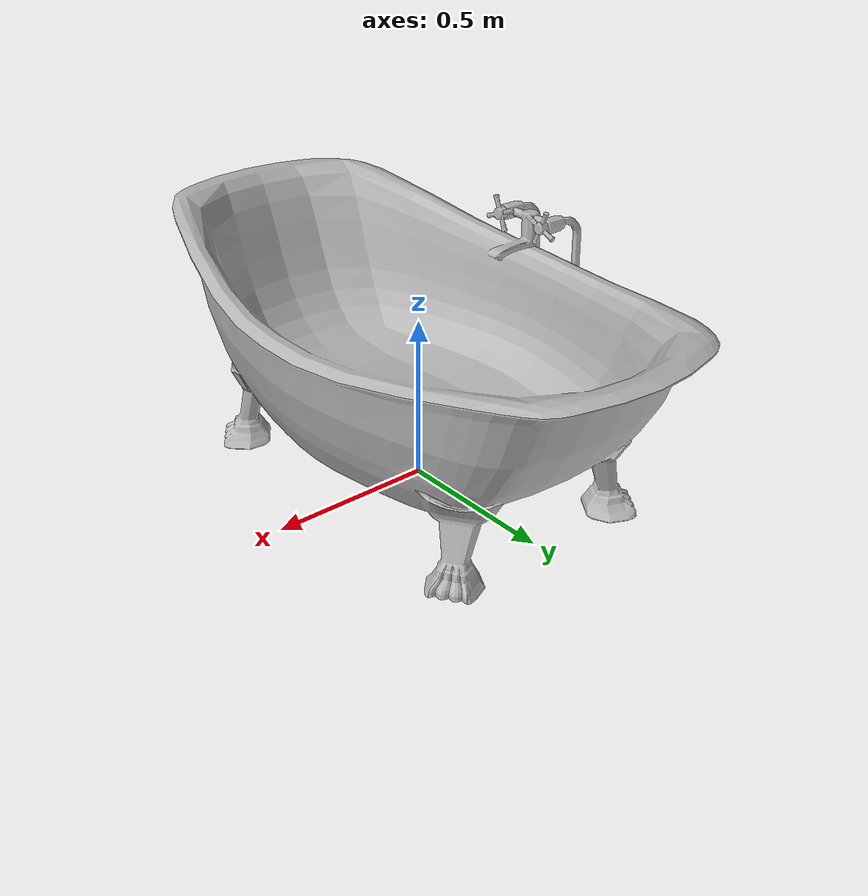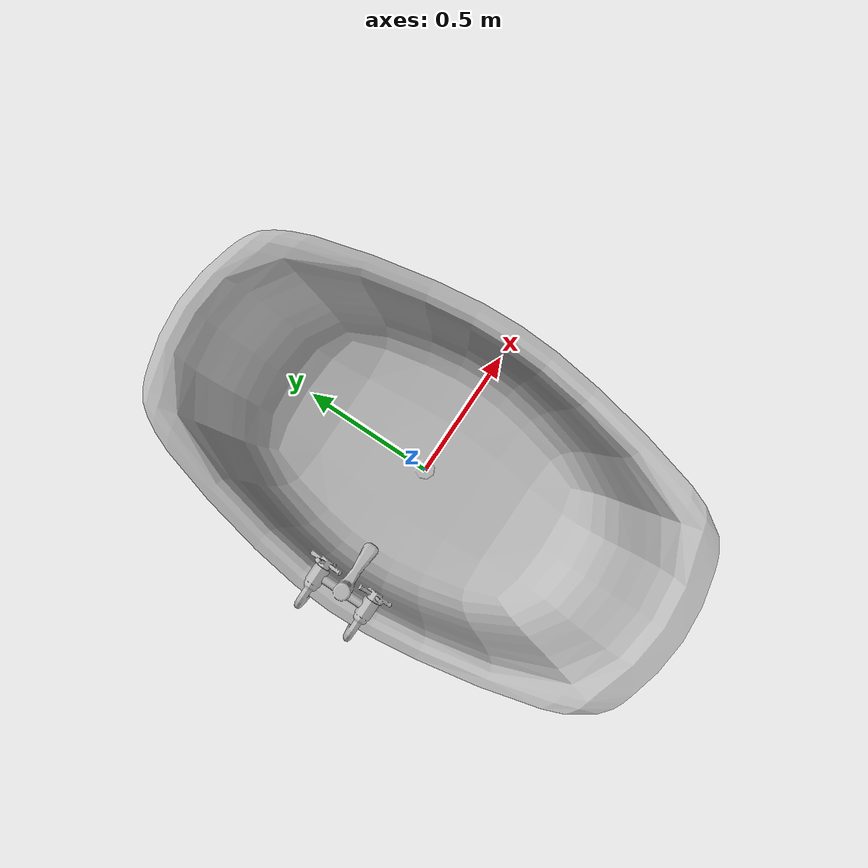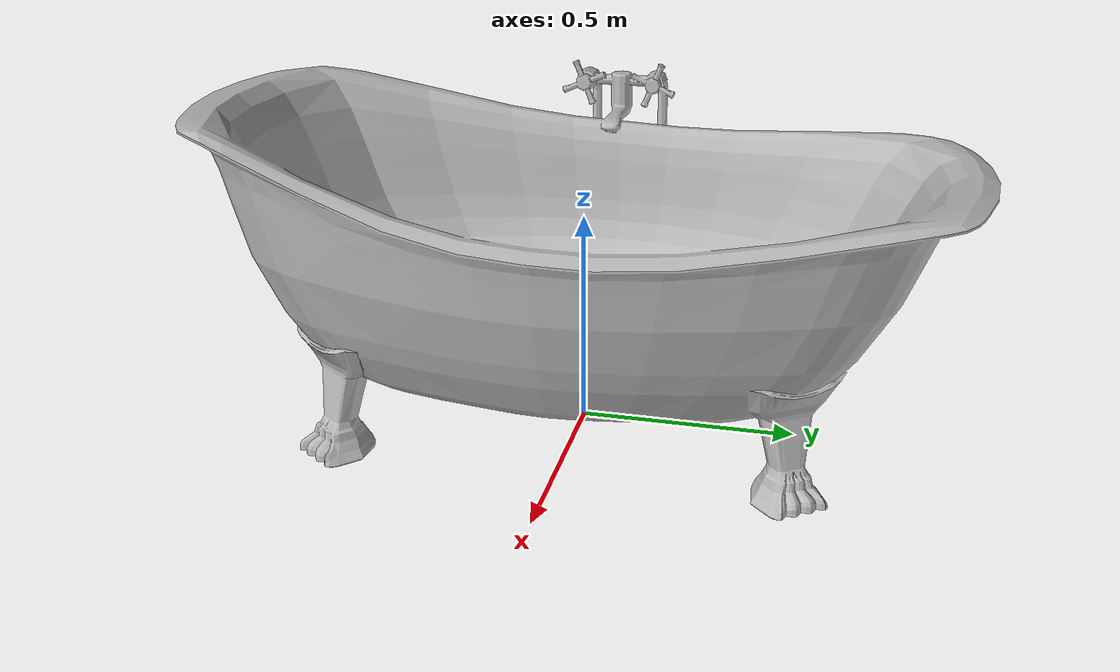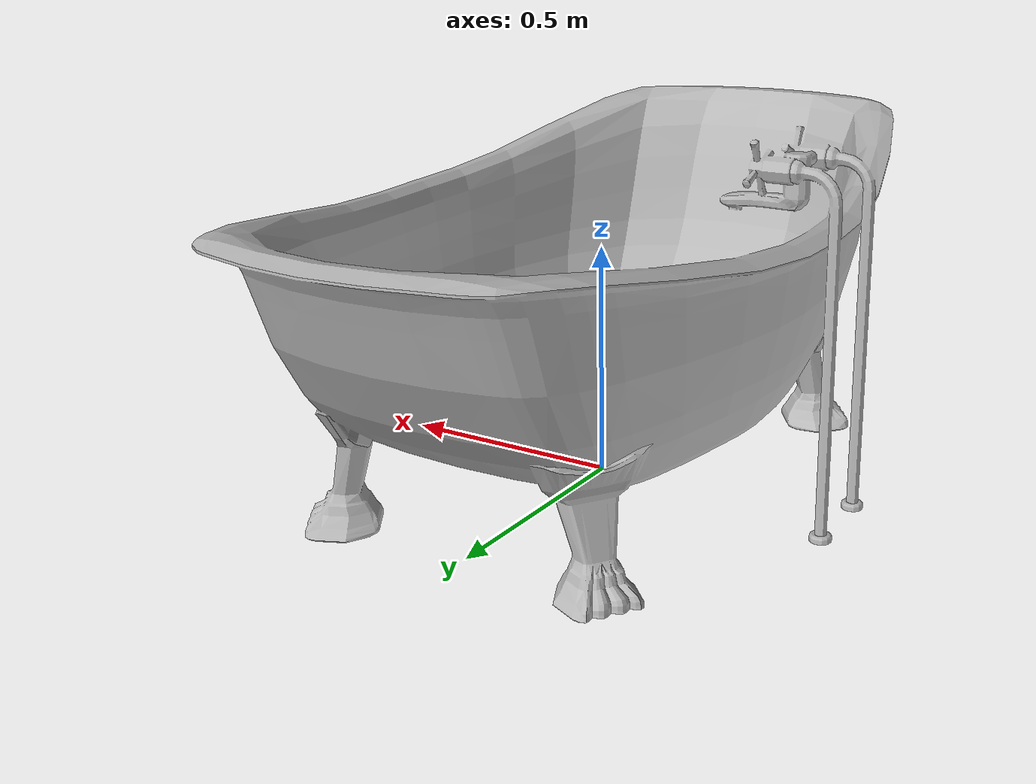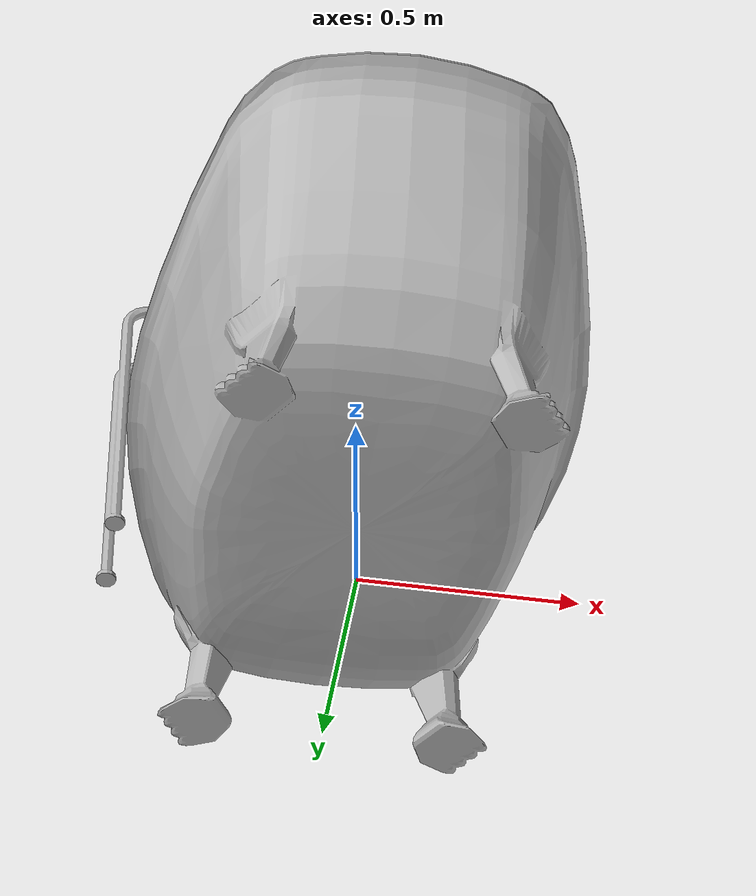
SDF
<?xml version='1.0'?>
<sdf version='1.4'>
  <model name='60'>
    <pose>0 0 0 0 0 0</pose>
    <static>true</static>
    <link name='link'>
      <collision name='collision'>
        <pose>0 0 0 0 0 0</pose>
        <geometry>
          <box>
            <size>1.09447 1.79014 2</size>
          </box>
        </geometry>
      </collision>
      <visual name='visual'>
        <pose>0 0 0 0 0 0</pose>
        <geometry>
          <mesh><uri>model://60/60.dae</uri></mesh>
        </geometry>
      </visual>
    </link>
  </model>
</sdf>
